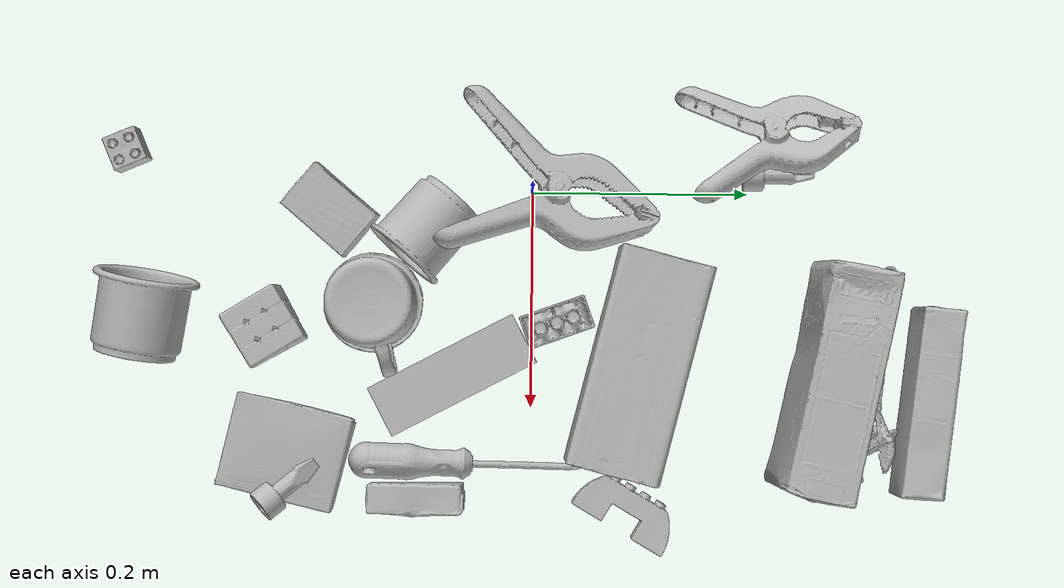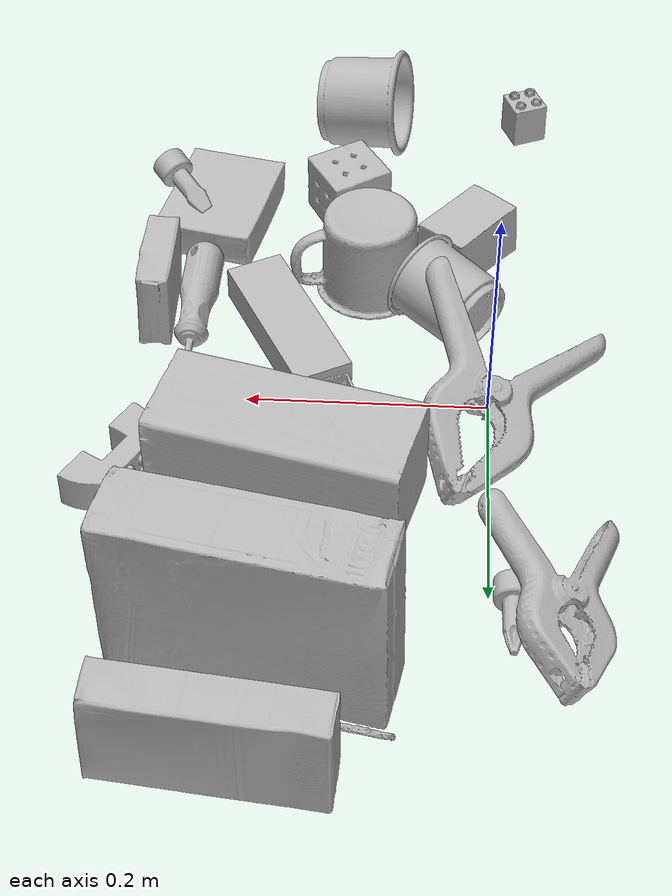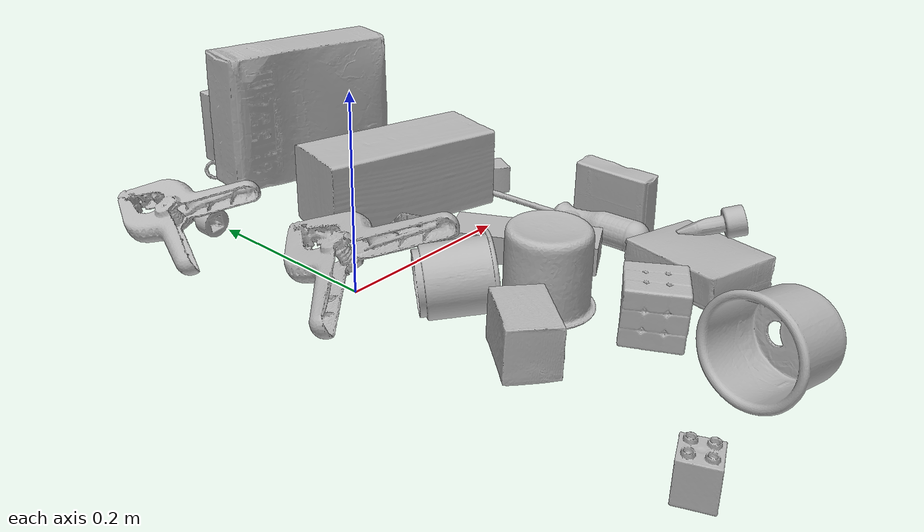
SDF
<sdf version="1.4">
  <world name="default">
    <light name="light1" type="point">
      <pose>0 0 1 0 0 0</pose>
      <diffuse>3 3 3 1</diffuse>
      <specular>3 3 3 1</specular>
    </light>
    <light name="light2" type="point">
      <pose>0 0.5 2 0 0 0</pose>
      <diffuse>1 1 1 1</diffuse>
      <specular>1 1 1 1</specular>
    </light>
    <light name="light3" type="point">
      <pose>0 0.5 2 0 0 0</pose>
      <diffuse>3 3 3 1</diffuse>
      <specular>3 3 3 1</specular>
    </light>
    <scene>
      <ambient>0.7 0.7 0.7</ambient>
    </scene>
    <model name="box21">
      <link name="link_box21">
        <collision name="default">
          <geometry>
            <mesh>
              <uri>model://cracker_box/collision_meshes/collision.obj</uri>
              <scale>1.0 1.0 1.0</scale>
            </mesh>
          </geometry>
          <surface>
            <friction>
              <ode>
                <mu>0.5</mu>
                <mu2>0.5</mu2>
              </ode>
            </friction>
          <contact>
        <ode>
            <max_vel>0</max_vel>
            <min_depth>0.0001</min_depth>
            <kp>1e8</kp>
        </ode>
    </contact></surface>
        </collision>
        <visual name="default">
          <geometry>
            <mesh>
              <uri>model://cracker_box/visual_meshes/visual.dae</uri>
              <scale>1.0 1.0 1.0</scale>
            </mesh>
          </geometry>
        </visual>
        <inertial>
          <mass>1.391977071762085</mass>
          <pose>0.0009464159375056624 0.0002543424488976598 -0.0017029533628374338 -0.000316207597302205 -0.011106489600460226 0.002546794768991959</pose>
          <inertia>
            <ixx>0.0035405685</ixx>
            <iyy>0.0058461735</iyy>
            <izz>0.008343027</izz>
            <ixy>0</ixy>
            <ixz>0</ixz>
            <iyz>0</iyz>
          </inertia>
        </inertial>
      </link>
      <pose>0.1706901490688324 0.2705193758010864 0.08175767958164215 1.5452338755099215 0.00903999953343728 -0.19472579582265445</pose>
    </model>
    <model name="box22">
      <link name="link_box22">
        <collision name="default">
          <geometry>
            <mesh>
              <uri>model://pudding_box/collision_meshes/collision.obj</uri>
              <scale>1.0 1.0 1.0</scale>
            </mesh>
          </geometry>
          <surface>
            <friction>
              <ode>
                <mu>0.5</mu>
                <mu2>0.5</mu2>
              </ode>
            </friction>
          <contact>
        <ode>
            <max_vel>0</max_vel>
            <min_depth>0.0001</min_depth>
            <kp>1e8</kp>
        </ode>
    </contact></surface>
        </collision>
        <visual name="default">
          <geometry>
            <mesh>
              <uri>model://pudding_box/visual_meshes/visual.dae</uri>
              <scale>1.0 1.0 1.0</scale>
            </mesh>
          </geometry>
        </visual>
        <inertial>
          <mass>0.30066633224487305</mass>
          <pose>0.0004894821904599667 0.0008067885646596551 -0.0005188827635720372 0.005213102250656644 -0.006603798267444238 0.020079828885202117</pose>
          <inertia>
            <ixx>0.0003398878</ixx>
            <iyy>0.00022867892</iyy>
            <izz>0.00050193316</izz>
            <ixy>0</ixy>
            <ixz>0</ixz>
            <iyz>0</iyz>
          </inertia>
        </inertial>
      </link>
      <pose>0.24207116663455963 -0.22613467276096344 0.01972580887377262 0.02234905020414245 -0.011390995056935724 2.89929474901724</pose>
    </model>
    <model name="box23">
      <link name="link_box23">
        <collision name="default">
          <geometry>
            <mesh>
              <uri>model://rubiks_cube/collision_meshes/collision.obj</uri>
              <scale>1.0 1.0 1.0</scale>
            </mesh>
          </geometry>
          <surface>
            <friction>
              <ode>
                <mu>0.5</mu>
                <mu2>0.5</mu2>
              </ode>
            </friction>
          <contact>
        <ode>
            <max_vel>0</max_vel>
            <min_depth>0.0001</min_depth>
            <kp>1e8</kp>
        </ode>
    </contact></surface>
        </collision>
        <visual name="default">
          <geometry>
            <mesh>
              <uri>model://rubiks_cube/visual_meshes/visual.dae</uri>
              <scale>1.0 1.0 1.0</scale>
            </mesh>
          </geometry>
        </visual>
        <inertial>
          <mass>0.26383036375045776</mass>
          <pose>2.6721041649580002e-05 5.256966323941015e-05 -7.264316082000732e-06 -0.054671492146459166 -0.0981403456898064 -0.03445706250673431</pose>
          <inertia>
            <ixx>0.000145784</ixx>
            <iyy>0.00014510413</iyy>
            <izz>0.00014699204</izz>
            <ixy>0</ixy>
            <ixz>0</ixz>
            <iyz>0</iyz>
          </inertia>
        </inertial>
      </link>
      <pose>0.12643443048000336 -0.2459719479084015 0.028678972274065018 -3.2109325027338227e-06 -1.2629155295149796e-06 0.5409926811487922</pose>
    </model>
    <model name="cup1">
      <link name="link_cup1">
        <collision name="default">
          <geometry>
            <mesh>
              <uri>model://i_cups/collision_meshes/collision.obj</uri>
              <scale>1.0 1.0 1.0</scale>
            </mesh>
          </geometry>
          <surface>
            <friction>
              <ode>
                <mu>0.5</mu>
                <mu2>0.5</mu2>
              </ode>
            </friction>
          <contact>
        <ode>
            <max_vel>0</max_vel>
            <min_depth>0.0001</min_depth>
            <kp>1e8</kp>
        </ode>
    </contact></surface>
        </collision>
        <visual name="default">
          <geometry>
            <mesh>
              <uri>model://i_cups/visual_meshes/visual.dae</uri>
              <scale>1.0 1.0 1.0</scale>
            </mesh>
          </geometry>
        </visual>
        <inertial>
          <mass>0.07817669957876205</mass>
          <pose>0.00011240140884183347 0.00016797371790744364 -0.0008579030982218683 -0.02898336998566683 -0.039872909189422004 -0.34590568894983</pose>
          <inertia>
            <ixx>0.000108236774</ixx>
            <iyy>0.000109190434</iyy>
            <izz>0.00012097212</izz>
            <ixy>0</ixy>
            <ixz>0</ixz>
            <iyz>0</iyz>
          </inertia>
        </inertial>
      </link>
      <pose>0.1171005517244339 -0.35760679841041565 0.04486355185508728 -1.457549508958408 0.030831412674749877 1.4062009168138918</pose>
    </model>
    <model name="cup2">
      <link name="link_cup2">
        <collision name="default">
          <geometry>
            <mesh>
              <uri>model://f_cups/collision_meshes/collision.obj</uri>
              <scale>1.0 1.0 1.0</scale>
            </mesh>
          </geometry>
          <surface>
            <friction>
              <ode>
                <mu>0.5</mu>
                <mu2>0.5</mu2>
              </ode>
            </friction>
          <contact>
        <ode>
            <max_vel>0</max_vel>
            <min_depth>0.0001</min_depth>
            <kp>1e8</kp>
        </ode>
    </contact></surface>
        </collision>
        <visual name="default">
          <geometry>
            <mesh>
              <uri>model://f_cups/visual_meshes/visual.dae</uri>
              <scale>1.0 1.0 1.0</scale>
            </mesh>
          </geometry>
        </visual>
        <inertial>
          <mass>0.06179655343294144</mass>
          <pose>-0.003171469084918499 -0.0006240077782422304 -0.0036555363330990076 0.786228783809594 -0.26079147583364887 -0.18237327348602217</pose>
          <inertia>
            <ixx>5.8090412e-05</ixx>
            <iyy>6.0937502e-05</iyy>
            <izz>6.3437656e-05</izz>
            <ixy>0</ixy>
            <ixz>0</ixz>
            <iyz>0</iyz>
          </inertia>
        </inertial>
      </link>
      <pose>0.033806949853897095 -0.09538589417934418 0.03762594982981682 -1.4591692289559655 -0.4855145807508576 -2.3404071184799893</pose>
    </model>
    <model name="box11">
      <link name="link_box11">
        <collision name="default">
          <geometry>
            <mesh>
              <uri>model://jenga/collision_meshes/collision.obj</uri>
              <scale>1.0 1.0 1.0</scale>
            </mesh>
          </geometry>
          <surface>
            <friction>
              <ode>
                <mu>0.5</mu>
                <mu2>0.5</mu2>
              </ode>
            </friction>
          <contact>
        <ode>
            <max_vel>0</max_vel>
            <min_depth>0.0001</min_depth>
            <kp>1e8</kp>
        </ode>
    </contact></surface>
        </collision>
        <visual name="default">
          <geometry>
            <mesh>
              <uri>model://jenga/visual_meshes/visual.dae</uri>
              <scale>1.0 1.0 1.0</scale>
            </mesh>
          </geometry>
        </visual>
        <inertial>
          <mass>0.2841220796108246</mass>
          <pose>-2.5028555228345795e-07 -0.00010250010382151231 -4.0923401684267446e-05 0.0 -7.34215461761844e-07 0.0</pose>
          <inertia>
            <ixx>7.8623474e-05</ixx>
            <iyy>0.00053275056</iyy>
            <izz>0.0005687565</izz>
            <ixy>0</ixy>
            <ixz>0</ixz>
            <iyz>0</iyz>
          </inertia>
        </inertial>
      </link>
      <pose>0.17021475732326508 -0.07267948985099792 0.015000001527369022 3.1415920724405924 -1.7818295244797673e-07 2.0534167984461127</pose>
    </model>
    <model name="box12">
      <link name="link_box12">
        <collision name="default">
          <geometry>
            <mesh>
              <uri>model://wood_block/collision_meshes/collision.obj</uri>
              <scale>1.0 1.0 1.0</scale>
            </mesh>
          </geometry>
          <surface>
            <friction>
              <ode>
                <mu>0.5</mu>
                <mu2>0.5</mu2>
              </ode>
            </friction>
          <contact>
        <ode>
            <max_vel>0</max_vel>
            <min_depth>0.0001</min_depth>
            <kp>1e8</kp>
        </ode>
    </contact></surface>
        </collision>
        <visual name="default">
          <geometry>
            <mesh>
              <uri>model://wood_block/visual_meshes/visual.dae</uri>
              <scale>1.0 1.0 1.0</scale>
            </mesh>
          </geometry>
        </visual>
        <inertial>
          <mass>1.792885661125183</mass>
          <pose>-5.813315510749817e-06 -0.0005708095268346369 0.0002640858292579651 -0.0522099864925601 -0.005192695938411627 -0.006861379223067069</pose>
          <inertia>
            <ixx>0.0023991528</ixx>
            <iyy>0.007578924</iyy>
            <izz>0.007550574</izz>
            <ixy>0</ixy>
            <ixz>0</ixz>
            <iyz>0</iyz>
          </inertia>
        </inertial>
      </link>
      <pose>0.15899209678173065 0.09865313768386841 0.04559164121747017 3.1414323783463347 -0.005752211540840007 -0.2514830085314029</pose>
    </model>
    <model name="box13">
      <link name="link_box13">
        <collision name="default">
          <geometry>
            <mesh>
              <uri>model://sugar_box/collision_meshes/collision.obj</uri>
              <scale>1.0 1.0 1.0</scale>
            </mesh>
          </geometry>
          <surface>
            <friction>
              <ode>
                <mu>0.5</mu>
                <mu2>0.5</mu2>
              </ode>
            </friction>
          <contact>
        <ode>
            <max_vel>0</max_vel>
            <min_depth>0.0001</min_depth>
            <kp>1e8</kp>
        </ode>
    </contact></surface>
        </collision>
        <visual name="default">
          <geometry>
            <mesh>
              <uri>model://sugar_box/visual_meshes/visual.dae</uri>
              <scale>1.0 1.0 1.0</scale>
            </mesh>
          </geometry>
        </visual>
        <inertial>
          <mass>0.8825364708900452</mass>
          <pose>0.0010343727190047503 3.8491099985549226e-05 -0.00036364805418998003 -0.0004046260965456432 0.0010506635219437153 0.002615379021860657</pose>
          <inertia>
            <ixx>0.0007353271</ixx>
            <iyy>0.0023767278</iyy>
            <izz>0.002845227</izz>
            <ixy>0</ixy>
            <ixz>0</ixz>
            <iyz>0</iyz>
          </inertia>
        </inertial>
      </link>
      <pose>0.19105437397956848 0.36261722445487976 0.04645011946558952 1.571013912927572 -3.954247007172626e-05 -0.11153923023890018</pose>
    </model>
    <model name="box14">
      <link name="link_box14">
        <collision name="default">
          <geometry>
            <mesh>
              <uri>model://gelatin_box/collision_meshes/collision.obj</uri>
              <scale>1.0 1.0 1.0</scale>
            </mesh>
          </geometry>
          <surface>
            <friction>
              <ode>
                <mu>0.5</mu>
                <mu2>0.5</mu2>
              </ode>
            </friction>
          <contact>
        <ode>
            <max_vel>0</max_vel>
            <min_depth>0.0001</min_depth>
            <kp>1e8</kp>
        </ode>
    </contact></surface>
        </collision>
        <visual name="default">
          <geometry>
            <mesh>
              <uri>model://gelatin_box/visual_meshes/visual.dae</uri>
              <scale>1.0 1.0 1.0</scale>
            </mesh>
          </geometry>
        </visual>
        <inertial>
          <mass>0.13771659135818481</mass>
          <pose>0.0004319618456065655 0.00011156871914863586 -0.0003640321083366871 -0.0010503722043797578 -0.004755819155943452 0.016440555746729004</pose>
          <inertia>
            <ixx>9.721668e-05</ixx>
            <iyy>6.944137e-05</iyy>
            <izz>0.00014798543</izz>
            <ixy>0</ixy>
            <ixz>0</ixz>
            <iyz>0</iyz>
          </inertia>
        </inertial>
      </link>
      <pose>0.2838227450847626 -0.10433486849069595 0.03643915429711342 0.21418032547150984 -1.5414478476772075 2.924164129897215</pose>
    </model>
    <model name="cup15">
      <link name="link_cup15">
        <collision name="default">
          <geometry>
            <mesh>
              <uri>model://mug/collision_meshes/collision.obj</uri>
              <scale>1.0 1.0 1.0</scale>
            </mesh>
          </geometry>
          <surface>
            <friction>
              <ode>
                <mu>0.5</mu>
                <mu2>0.5</mu2>
              </ode>
            </friction>
          <contact>
        <ode>
            <max_vel>0</max_vel>
            <min_depth>0.0001</min_depth>
            <kp>1e8</kp>
        </ode>
    </contact></surface>
        </collision>
        <visual name="default">
          <geometry>
            <mesh>
              <uri>model://mug/visual_meshes/visual.dae</uri>
              <scale>1.0 1.0 1.0</scale>
            </mesh>
          </geometry>
        </visual>
        <inertial>
          <mass>0.09286905825138092</mass>
          <pose>0.009571668691933155 0.0008143252343870699 -0.010947328992187977 -0.12983168029791675 0.08737751579099198 0.05507277032354666</pose>
          <inertia>
            <ixx>9.2248694e-05</ixx>
            <iyy>0.00010303637</iyy>
            <izz>0.00011916295</izz>
            <ixy>0</ixy>
            <ixz>0</ixz>
            <iyz>0</iyz>
          </inertia>
        </inertial>
      </link>
      <pose>0.11531035602092743 -0.1447376161813736 0.04095800966024399 -3.1415870947691396 -1.1209965282036784e-06 -2.8517268463979355</pose>
    </model>
    <model name="toy1">
      <link name="link_toy1">
        <collision name="default">
          <geometry>
            <mesh>
              <uri>model://e_toy_airplane/collision_meshes/collision.obj</uri>
              <scale>1.0 1.0 1.0</scale>
            </mesh>
          </geometry>
          <surface>
            <friction>
              <ode>
                <mu>0.5</mu>
                <mu2>0.5</mu2>
              </ode>
            </friction>
          <contact>
        <ode>
            <max_vel>0</max_vel>
            <min_depth>0.0001</min_depth>
            <kp>1e8</kp>
        </ode>
    </contact></surface>
        </collision>
        <visual name="default">
          <geometry>
            <mesh>
              <uri>model://e_toy_airplane/visual_meshes/visual.dae</uri>
              <scale>1.0 1.0 1.0</scale>
            </mesh>
          </geometry>
        </visual>
        <inertial>
          <mass>0.023911256343126297</mass>
          <pose>0.00011740469199139625 -2.2482965505332686e-05 -0.011187205091118813 0.005518515901869279 0.009228280443904262 0.15041685177791278</pose>
          <inertia>
            <ixx>7.297989e-06</ixx>
            <iyy>7.223337e-06</iyy>
            <izz>2.1933329e-06</izz>
            <ixy>0</ixy>
            <ixz>0</ixz>
            <iyz>0</iyz>
          </inertia>
        </inertial>
      </link>
      <pose>0.27152085304260254 -0.22112415730953217 0.04679364711046219 -2.5292060214371155 -1.272554066311539 1.6231997308498791</pose>
    </model>
    <model name="toy2">
      <link name="link_toy2">
        <collision name="default">
          <geometry>
            <mesh>
              <uri>model://e_lego_duplo/collision_meshes/collision.obj</uri>
              <scale>1.0 1.0 1.0</scale>
            </mesh>
          </geometry>
          <surface>
            <friction>
              <ode>
                <mu>0.5</mu>
                <mu2>0.5</mu2>
              </ode>
            </friction>
          <contact>
        <ode>
            <max_vel>0</max_vel>
            <min_depth>0.0001</min_depth>
            <kp>1e8</kp>
        </ode>
    </contact></surface>
        </collision>
        <visual name="default">
          <geometry>
            <mesh>
              <uri>model://e_lego_duplo/visual_meshes/visual.dae</uri>
              <scale>1.0 1.0 1.0</scale>
            </mesh>
          </geometry>
        </visual>
        <inertial>
          <mass>0.11075761169195175</mass>
          <pose>0.00032560486579313874 0.0002348541165702045 0.0019521445501595736 -0.02256776115193108 -6.825012723321977e-05 -0.007625153470106003</pose>
          <inertia>
            <ixx>2.3096625e-05</ixx>
            <iyy>9.479449e-05</iyy>
            <izz>9.231077e-05</izz>
            <ixy>0</ixy>
            <ixz>0</ixz>
            <iyz>0</iyz>
          </inertia>
        </inertial>
      </link>
      <pose>0.2931775748729706 0.09099338948726654 0.01651841029524803 -1.5716588986097173 0.005919150575638421 1.037063143524464</pose>
    </model>
    <model name="toy3">
      <link name="link_toy3">
        <collision name="default">
          <geometry>
            <mesh>
              <uri>model://foam_brick/collision_meshes/collision.obj</uri>
              <scale>1.0 1.0 1.0</scale>
            </mesh>
          </geometry>
          <surface>
            <friction>
              <ode>
                <mu>0.5</mu>
                <mu2>0.5</mu2>
              </ode>
            </friction>
          <contact>
        <ode>
            <max_vel>0</max_vel>
            <min_depth>0.0001</min_depth>
            <kp>1e8</kp>
        </ode>
    </contact></surface>
        </collision>
        <visual name="default">
          <geometry>
            <mesh>
              <uri>model://foam_brick/visual_meshes/visual.dae</uri>
              <scale>1.0 1.0 1.0</scale>
            </mesh>
          </geometry>
        </visual>
        <inertial>
          <mass>0.18736568093299866</mass>
          <pose>-0.0002522472059354186 0.0003458441933616996 -0.0002532101352699101 -0.2940186982087205 0.017274432871393446 -0.000744985669109422</pose>
          <inertia>
            <ixx>8.184482e-05</ixx>
            <iyy>0.00013066948</iyy>
            <izz>0.00013233014</izz>
            <ixy>0</ixy>
            <ixz>0</ixz>
            <iyz>0</iyz>
          </inertia>
        </inertial>
      </link>
      <pose>0.018270116299390793 -0.1868029087781906 0.026264894753694534 -1.5819344758776834 -0.012729143982869564 -2.2772917507024752</pose>
    </model>
    <model name="toy4">
      <link name="link_toy4">
        <collision name="default">
          <geometry>
            <mesh>
              <uri>model://b_lego_duplo/collision_meshes/collision.obj</uri>
              <scale>1.0 1.0 1.0</scale>
            </mesh>
          </geometry>
          <surface>
            <friction>
              <ode>
                <mu>0.5</mu>
                <mu2>0.5</mu2>
              </ode>
            </friction>
          <contact>
        <ode>
            <max_vel>0</max_vel>
            <min_depth>0.0001</min_depth>
            <kp>1e8</kp>
        </ode>
    </contact></surface>
        </collision>
        <visual name="default">
          <geometry>
            <mesh>
              <uri>model://b_lego_duplo/visual_meshes/visual.dae</uri>
              <scale>1.0 1.0 1.0</scale>
            </mesh>
          </geometry>
        </visual>
        <inertial>
          <mass>0.025353357195854187</mass>
          <pose>-0.00011053043272113428 -9.152237907983363e-06 0.001929429010488093 -0.03749469050897604 -0.02635423063131295 0.4518929125976256</pose>
          <inertia>
            <ixx>5.188755e-06</ixx>
            <iyy>5.223636e-06</iyy>
            <izz>4.623011e-06</izz>
            <ixy>0</ixy>
            <ixz>0</ixz>
            <iyz>0</iyz>
          </inertia>
        </inertial>
      </link>
      <pose>-0.035591937601566315 -0.37520501017570496 0.021814996376633644 7.569745994717768e-06 6.9737631693027505e-06 1.966717238368656</pose>
    </model>
    <model name="toy5">
      <link name="link_toy5">
        <collision name="default">
          <geometry>
            <mesh>
              <uri>model://d_toy_airplane/collision_meshes/collision.obj</uri>
              <scale>1.0 1.0 1.0</scale>
            </mesh>
          </geometry>
          <surface>
            <friction>
              <ode>
                <mu>0.5</mu>
                <mu2>0.5</mu2>
              </ode>
            </friction>
          <contact>
        <ode>
            <max_vel>0</max_vel>
            <min_depth>0.0001</min_depth>
            <kp>1e8</kp>
        </ode>
    </contact></surface>
        </collision>
        <visual name="default">
          <geometry>
            <mesh>
              <uri>model://d_toy_airplane/visual_meshes/visual.dae</uri>
              <scale>1.0 1.0 1.0</scale>
            </mesh>
          </geometry>
        </visual>
        <inertial>
          <mass>0.012228579260408878</mass>
          <pose>9.410289931111038e-05 -5.8093195548281074e-05 -0.011728097684681416 0.00026677116185868234 0.004678984415060646 0.5194210089241819</pose>
          <inertia>
            <ixx>3.6658907e-06</ixx>
            <iyy>3.6686554e-06</iyy>
            <izz>1.1067563e-06</izz>
            <ixy>0</ixy>
            <ixz>0</ixz>
            <iyz>0</iyz>
          </inertia>
        </inertial>
      </link>
      <pose>-0.01778341829776764 0.2275191843509674 0.015433821827173233 1.691395307365943 1.5614697005278886 -3.0242916274277887</pose>
    </model>
    <model name="toy6">
      <link name="link_toy6">
        <collision name="default">
          <geometry>
            <mesh>
              <uri>model://a_lego_duplo/collision_meshes/collision.obj</uri>
              <scale>1.0 1.0 1.0</scale>
            </mesh>
          </geometry>
          <surface>
            <friction>
              <ode>
                <mu>0.5</mu>
                <mu2>0.5</mu2>
              </ode>
            </friction>
          <contact>
        <ode>
            <max_vel>0</max_vel>
            <min_depth>0.0001</min_depth>
            <kp>1e8</kp>
        </ode>
    </contact></surface>
        </collision>
        <visual name="default">
          <geometry>
            <mesh>
              <uri>model://a_lego_duplo/visual_meshes/visual.dae</uri>
              <scale>1.0 1.0 1.0</scale>
            </mesh>
          </geometry>
        </visual>
        <inertial>
          <mass>0.012199957855045795</mass>
          <pose>-0.00011337617615936324 0.00018517585704103112 0.0003692606114782393 -0.014116995063493705 -0.0001256559143483996 6.140869386576653e-05</pose>
          <inertia>
            <ixx>1.564132e-06</ixx>
            <iyy>3.5039989e-06</iyy>
            <izz>4.340482e-06</izz>
            <ixy>0</ixy>
            <ixz>0</ixz>
            <iyz>0</iyz>
          </inertia>
        </inertial>
      </link>
      <pose>0.12032024562358856 0.023649735376238823 0.012124809436500072 -3.1412836002004236 -0.015583117408392865 -1.2326202403817617</pose>
    </model>
    <model name="hardware1">
      <link name="link_hardware1">
        <collision name="default">
          <geometry>
            <mesh>
              <uri>model://phillips_screwdriver/collision_meshes/collision.obj</uri>
              <scale>1.0 1.0 1.0</scale>
            </mesh>
          </geometry>
          <surface>
            <friction>
              <ode>
                <mu>0.5</mu>
                <mu2>0.5</mu2>
              </ode>
            </friction>
          <contact>
        <ode>
            <max_vel>0</max_vel>
            <min_depth>0.0001</min_depth>
            <kp>1e8</kp>
        </ode>
    </contact></surface>
        </collision>
        <visual name="default">
          <geometry>
            <mesh>
              <uri>model://phillips_screwdriver/visual_meshes/visual.dae</uri>
              <scale>1.0 1.0 1.0</scale>
            </mesh>
          </geometry>
        </visual>
        <inertial>
          <mass>0.06495495140552521</mass>
          <pose>-0.04777183011174202 0.0010362302418798208 -0.00045555501128546894 -0.1571888451297522 0.005850998841919991 -0.0021567342335393844</pose>
          <inertia>
            <ixx>7.63154e-06</ixx>
            <iyy>9.568614e-05</iyy>
            <izz>9.576745e-05</izz>
            <ixy>0</ixy>
            <ixz>0</ixz>
            <iyz>0</iyz>
          </inertia>
        </inertial>
      </link>
      <pose>0.25185322761535645 -0.06264710426330566 0.016147257760167122 -1.098373777689117 0.044909243076562196 1.54800351792831</pose>
    </model>
    <model name="hardware2">
      <link name="link_hardware2">
        <collision name="default">
          <geometry>
            <mesh>
              <uri>model://extra_large_clamp/collision_meshes/collision.obj</uri>
              <scale>1.0 1.0 1.0</scale>
            </mesh>
          </geometry>
          <surface>
            <friction>
              <ode>
                <mu>0.5</mu>
                <mu2>0.5</mu2>
              </ode>
            </friction>
          <contact>
        <ode>
            <max_vel>0</max_vel>
            <min_depth>0.0001</min_depth>
            <kp>1e8</kp>
        </ode>
    </contact></surface>
        </collision>
        <visual name="default">
          <geometry>
            <mesh>
              <uri>model://extra_large_clamp/visual_meshes/visual.dae</uri>
              <scale>1.0 1.0 1.0</scale>
            </mesh>
          </geometry>
        </visual>
        <inertial>
          <mass>0.19384004175662994</mass>
          <pose>0.003232018556445837 -7.61538467486389e-05 0.00031721554114483297 0.013786997874205318 -0.000506684650300538 -0.0008936209831217155</pose>
          <inertia>
            <ixx>0.00029460518</ixx>
            <iyy>0.00050721905</iyy>
            <izz>0.0007749263</izz>
            <ixy>0</ixy>
            <ixz>0</ixz>
            <iyz>0</iyz>
          </inertia>
        </inertial>
      </link>
      <pose>0.0009761524270288646 0.019233593717217445 0.03409140184521675 -0.4187576167928978 0.20078664127948803 1.296557926402585</pose>
    </model>
    <model name="hardware3">
      <link name="link_hardware3">
        <collision name="default">
          <geometry>
            <mesh>
              <uri>model://large_clamp/collision_meshes/collision.obj</uri>
              <scale>1.0 1.0 1.0</scale>
            </mesh>
          </geometry>
          <surface>
            <friction>
              <ode>
                <mu>0.5</mu>
                <mu2>0.5</mu2>
              </ode>
            </friction>
          <contact>
        <ode>
            <max_vel>0</max_vel>
            <min_depth>0.0001</min_depth>
            <kp>1e8</kp>
        </ode>
    </contact></surface>
        </collision>
        <visual name="default">
          <geometry>
            <mesh>
              <uri>model://large_clamp/visual_meshes/visual.dae</uri>
              <scale>1.0 1.0 1.0</scale>
            </mesh>
          </geometry>
        </visual>
        <inertial>
          <mass>0.09168914705514908</mass>
          <pose>0.006369357462972403 0.0003585686208680272 -0.0001839803735492751 -0.0021330784539622108 0.00967158945845961 0.026633182273159455</pose>
          <inertia>
            <ixx>8.0894904e-05</ixx>
            <iyy>0.00015362375</iyy>
            <izz>0.00022223631</izz>
            <ixy>0</ixy>
            <ixz>0</ixz>
            <iyz>0</iyz>
          </inertia>
        </inertial>
      </link>
      <pose>-0.05184416472911835 0.22077466547489166 0.02916814014315605 2.674497913390068 0.1027738066113398 1.6959546969943669</pose>
    </model>
    <model name="hardware4">
      <link name="link_hardware4">
        <collision name="default">
          <geometry>
            <mesh>
              <uri>model://adjustable_wrench/collision_meshes/collision.obj</uri>
              <scale>1.0 1.0 1.0</scale>
            </mesh>
          </geometry>
          <surface>
            <friction>
              <ode>
                <mu>0.5</mu>
                <mu2>0.5</mu2>
              </ode>
            </friction>
          <contact>
        <ode>
            <max_vel>0</max_vel>
            <min_depth>0.0001</min_depth>
            <kp>1e8</kp>
        </ode>
    </contact></surface>
        </collision>
        <visual name="default">
          <geometry>
            <mesh>
              <uri>model://adjustable_wrench/visual_meshes/visual.dae</uri>
              <scale>1.0 1.0 1.0</scale>
            </mesh>
          </geometry>
        </visual>
        <inertial>
          <mass>0.03454793244600296</mass>
          <pose>0.03740980476140976 -0.0028968879487365484 -0.001114922808483243 -0.01447336202596381 0.006656025927011416 -0.010954184309206349</pose>
          <inertia>
            <ixx>7.0707333e-06</ixx>
            <iyy>8.275469e-05</iyy>
            <izz>8.944984e-05</izz>
            <ixy>0</ixy>
            <ixz>0</ixz>
            <iyz>0</iyz>
          </inertia>
        </inertial>
      </link>
      <pose>0.16975939273834229 0.3215455412864685 0.02114744856953621 0.8617224625388927 -0.08367047877928098 -0.13272807409495313</pose>
    </model>
  <physics type="ode">
      <max_contacts>50</max_contacts>
      <ode>
        <solver>
          <type>quick</type>
          <iters>75</iters>
        </solver>
        <constraints>
          <contact_max_correcting_vel>0</contact_max_correcting_vel>
          <contact_surface_layer>0</contact_surface_layer>
        </constraints>
      </ode>
    </physics></world>
</sdf>
